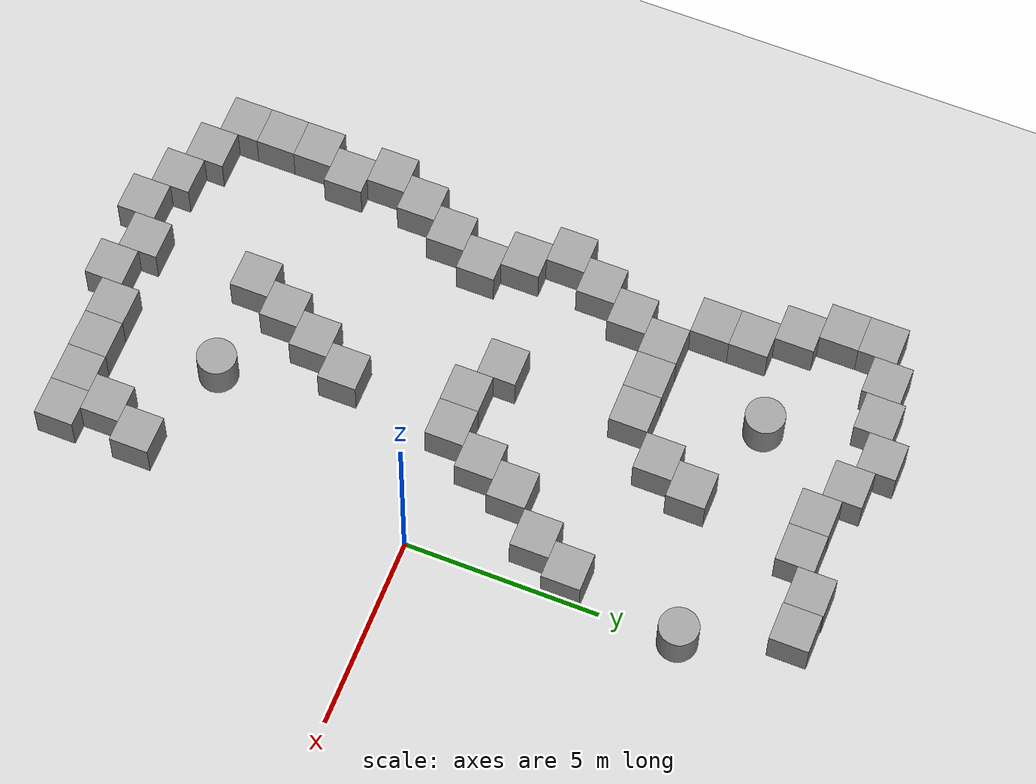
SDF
<sdf version="1.4">
 <world name="default">
  <model name="ground_plane">
   <static>1</static>
   <link name="link">
    <collision name="collision">
     <geometry><plane><normal>0 0 1</normal><size>100 100</size></plane></geometry>
     <surface><friction><ode><mu>100</mu><mu2>50</mu2></ode></friction></surface>
    </collision>
    <visual name="visual">
     <cast_shadows>0</cast_shadows>
     <geometry><plane><normal>0 0 1</normal><size>100 100</size></plane></geometry>
     <material>
      <script><uri>file://media/materials/scripts/gazebo.material</uri><name>Gazebo/Grey</name></script>
     </material>
    </visual>
    <velocity_decay><linear>0</linear><angular>0</angular></velocity_decay>
   </link>
  </model>
  <model name="unit_box_1">
   <pose>2e-06 -9 0.5 0 -0 5e-06</pose>
   <link name="link">
    <inertial>
     <mass>1</mass>
     <inertia><ixx>1</ixx><ixy>0</ixy><ixz>0</ixz><iyy>1</iyy><iyz>0</iyz><izz>1</izz></inertia>
    </inertial>
    <collision name="collision"><geometry><box><size>1 1 1</size></box></geometry></collision>
    <visual name="visual">
     <geometry><box><size>1 1 1</size></box></geometry>
     <material>
      <script><uri>file://media/materials/scripts/gazebo.material</uri><name>Gazebo/Grey</name></script>
     </material>
    </visual>
    <velocity_decay><linear>0</linear><angular>0</angular></velocity_decay>
   </link>
   <static>0</static>
  </model>
  <model name="unit_box_16">
   <pose>-0.505545 -8 0.5 0 -0 3e-06</pose>
   <link name="link">
    <inertial>
     <mass>1</mass>
     <inertia><ixx>1</ixx><ixy>0</ixy><ixz>0</ixz><iyy>1</iyy><iyz>0</iyz><izz>1</izz></inertia>
    </inertial>
    <collision name="collision"><geometry><box><size>1 1 1</size></box></geometry></collision>
    <visual name="visual">
     <geometry><box><size>1 1 1</size></box></geometry>
     <material>
      <script><uri>file://media/materials/scripts/gazebo.material</uri><name>Gazebo/Grey</name></script>
     </material>
    </visual>
    <velocity_decay><linear>0</linear><angular>0</angular></velocity_decay>
   </link>
   <static>0</static>
  </model>
  <model name="unit_box_17">
   <pose>1e-06 -7 0.5 0 0 -3e-06</pose>
   <link name="link">
    <inertial>
     <mass>1</mass>
     <inertia><ixx>1</ixx><ixy>0</ixy><ixz>0</ixz><iyy>1</iyy><iyz>0</iyz><izz>1</izz></inertia>
    </inertial>
    <collision name="collision"><geometry><box><size>1 1 1</size></box></geometry></collision>
    <visual name="visual">
     <geometry><box><size>1 1 1</size></box></geometry>
     <material>
      <script><uri>file://media/materials/scripts/gazebo.material</uri><name>Gazebo/Grey</name></script>
     </material>
    </visual>
    <velocity_decay><linear>0</linear><angular>0</angular></velocity_decay>
   </link>
   <static>0</static>
  </model>
  <model name="unit_box_51">
   <pose>-0.493767 4 0.5 0 -0 0</pose>
   <link name="link">
    <inertial>
     <mass>1</mass>
     <inertia><ixx>1</ixx><ixy>0</ixy><ixz>0</ixz><iyy>1</iyy><iyz>0</iyz><izz>1</izz></inertia>
    </inertial>
    <collision name="collision"><geometry><box><size>1 1 1</size></box></geometry></collision>
    <visual name="visual">
     <geometry><box><size>1 1 1</size></box></geometry>
     <material>
      <script><uri>file://media/materials/scripts/gazebo.material</uri><name>Gazebo/Grey</name></script>
     </material>
    </visual>
    <velocity_decay><linear>0</linear><angular>0</angular></velocity_decay>
   </link>
   <static>0</static>
  </model>
  <model name="unit_box_52">
   <pose>-1 3 0.5 0 -0 0</pose>
   <link name="link">
    <inertial>
     <mass>1</mass>
     <inertia><ixx>1</ixx><ixy>0</ixy><ixz>0</ixz><iyy>1</iyy><iyz>0</iyz><izz>1</izz></inertia>
    </inertial>
    <collision name="collision"><geometry><box><size>1 1 1</size></box></geometry></collision>
    <visual name="visual">
     <geometry><box><size>1 1 1</size></box></geometry>
     <material>
      <script><uri>file://media/materials/scripts/gazebo.material</uri><name>Gazebo/Grey</name></script>
     </material>
    </visual>
    <velocity_decay><linear>0</linear><angular>0</angular></velocity_decay>
   </link>
   <static>0</static>
  </model>
  <model name="unit_box_53">
   <pose>-2 2 0.5 0 -0 0</pose>
   <link name="link">
    <inertial>
     <mass>1</mass>
     <inertia><ixx>1</ixx><ixy>0</ixy><ixz>0</ixz><iyy>1</iyy><iyz>0</iyz><izz>1</izz></inertia>
    </inertial>
    <collision name="collision"><geometry><box><size>1 1 1</size></box></geometry></collision>
    <visual name="visual">
     <geometry><box><size>1 1 1</size></box></geometry>
     <material>
      <script><uri>file://media/materials/scripts/gazebo.material</uri><name>Gazebo/Grey</name></script>
     </material>
    </visual>
    <velocity_decay><linear>0</linear><angular>0</angular></velocity_decay>
   </link>
   <static>0</static>
  </model>
  <model name="unit_box_55">
   <pose>-2.42552 1 0.5 0 -0 0</pose>
   <link name="link">
    <inertial>
     <mass>1</mass>
     <inertia><ixx>1</ixx><ixy>0</ixy><ixz>0</ixz><iyy>1</iyy><iyz>0</iyz><izz>1</izz></inertia>
    </inertial>
    <collision name="collision"><geometry><box><size>1 1 1</size></box></geometry></collision>
    <visual name="visual">
     <geometry><box><size>1 1 1</size></box></geometry>
     <material>
      <script><uri>file://media/materials/scripts/gazebo.material</uri><name>Gazebo/Grey</name></script>
     </material>
    </visual>
    <velocity_decay><linear>0</linear><angular>0</angular></velocity_decay>
   </link>
   <static>0</static>
  </model>
  <model name="unit_box_56">
   <pose>-3 0 0.5 0 -0 0</pose>
   <link name="link">
    <inertial>
     <mass>1</mass>
     <inertia><ixx>1</ixx><ixy>0</ixy><ixz>0</ixz><iyy>1</iyy><iyz>0</iyz><izz>1</izz></inertia>
    </inertial>
    <collision name="collision"><geometry><box><size>1 1 1</size></box></geometry></collision>
    <visual name="visual">
     <geometry><box><size>1 1 1</size></box></geometry>
     <material>
      <script><uri>file://media/materials/scripts/gazebo.material</uri><name>Gazebo/Grey</name></script>
     </material>
    </visual>
    <velocity_decay><linear>0</linear><angular>0</angular></velocity_decay>
   </link>
   <static>0</static>
  </model>
  <model name="unit_box_57">
   <pose>-3.43559 -3 0.5 0 -0 0</pose>
   <link name="link">
    <inertial>
     <mass>1</mass>
     <inertia><ixx>1</ixx><ixy>0</ixy><ixz>0</ixz><iyy>1</iyy><iyz>0</iyz><izz>1</izz></inertia>
    </inertial>
    <collision name="collision"><geometry><box><size>1 1 1</size></box></geometry></collision>
    <visual name="visual">
     <geometry><box><size>1 1 1</size></box></geometry>
     <material>
      <script><uri>file://media/materials/scripts/gazebo.material</uri><name>Gazebo/Grey</name></script>
     </material>
    </visual>
    <velocity_decay><linear>0</linear><angular>0</angular></velocity_decay>
   </link>
   <static>0</static>
  </model>
  <model name="unit_box_58">
   <pose>-4 -4 0.5 0 -0 0</pose>
   <link name="link">
    <inertial>
     <mass>1</mass>
     <inertia><ixx>1</ixx><ixy>0</ixy><ixz>0</ixz><iyy>1</iyy><iyz>0</iyz><izz>1</izz></inertia>
    </inertial>
    <collision name="collision"><geometry><box><size>1 1 1</size></box></geometry></collision>
    <visual name="visual">
     <geometry><box><size>1 1 1</size></box></geometry>
     <material>
      <script><uri>file://media/materials/scripts/gazebo.material</uri><name>Gazebo/Grey</name></script>
     </material>
    </visual>
    <velocity_decay><linear>0</linear><angular>0</angular></velocity_decay>
   </link>
   <static>0</static>
  </model>
  <model name="unit_box_59">
   <pose>-4.4999 -5 0.5 0 -0 0</pose>
   <link name="link">
    <inertial>
     <mass>1</mass>
     <inertia><ixx>1</ixx><ixy>0</ixy><ixz>0</ixz><iyy>1</iyy><iyz>0</iyz><izz>1</izz></inertia>
    </inertial>
    <collision name="collision"><geometry><box><size>1 1 1</size></box></geometry></collision>
    <visual name="visual">
     <geometry><box><size>1 1 1</size></box></geometry>
     <material>
      <script><uri>file://media/materials/scripts/gazebo.material</uri><name>Gazebo/Grey</name></script>
     </material>
    </visual>
    <velocity_decay><linear>0</linear><angular>0</angular></velocity_decay>
   </link>
   <static>0</static>
  </model>
  <model name="unit_box_60">
   <pose>-5 -6 0.5 0 -0 0</pose>
   <link name="link">
    <inertial>
     <mass>1</mass>
     <inertia><ixx>1</ixx><ixy>0</ixy><ixz>0</ixz><iyy>1</iyy><iyz>0</iyz><izz>1</izz></inertia>
    </inertial>
    <collision name="collision"><geometry><box><size>1 1 1</size></box></geometry></collision>
    <visual name="visual">
     <geometry><box><size>1 1 1</size></box></geometry>
     <material>
      <script><uri>file://media/materials/scripts/gazebo.material</uri><name>Gazebo/Grey</name></script>
     </material>
    </visual>
    <velocity_decay><linear>0</linear><angular>0</angular></velocity_decay>
   </link>
   <static>0</static>
  </model>
  <model name="unit_box_61">
   <pose>-0.999998 -9.00001 0.5 0 -0 5e-06</pose>
   <link name="link">
    <inertial>
     <mass>1</mass>
     <inertia><ixx>1</ixx><ixy>0</ixy><ixz>0</ixz><iyy>1</iyy><iyz>0</iyz><izz>1</izz></inertia>
    </inertial>
    <collision name="collision"><geometry><box><size>1 1 1</size></box></geometry></collision>
    <visual name="visual">
     <geometry><box><size>1 1 1</size></box></geometry>
     <material>
      <script><uri>file://media/materials/scripts/gazebo.material</uri><name>Gazebo/Grey</name></script>
     </material>
    </visual>
    <velocity_decay><linear>0</linear><angular>0</angular></velocity_decay>
   </link>
   <static>0</static>
  </model>
  <model name="unit_box_62">
   <pose>-2 -9.00001 0.5 0 -0 5e-06</pose>
   <link name="link">
    <inertial>
     <mass>1</mass>
     <inertia><ixx>1</ixx><ixy>0</ixy><ixz>0</ixz><iyy>1</iyy><iyz>0</iyz><izz>1</izz></inertia>
    </inertial>
    <collision name="collision"><geometry><box><size>1 1 1</size></box></geometry></collision>
    <visual name="visual">
     <geometry><box><size>1 1 1</size></box></geometry>
     <material>
      <script><uri>file://media/materials/scripts/gazebo.material</uri><name>Gazebo/Grey</name></script>
     </material>
    </visual>
    <velocity_decay><linear>0</linear><angular>0</angular></velocity_decay>
   </link>
   <static>0</static>
  </model>
  <model name="unit_box_63">
   <pose>-3 -9 0.5 0 -0 6e-06</pose>
   <link name="link">
    <inertial>
     <mass>1</mass>
     <inertia><ixx>1</ixx><ixy>0</ixy><ixz>0</ixz><iyy>1</iyy><iyz>0</iyz><izz>1</izz></inertia>
    </inertial>
    <collision name="collision"><geometry><box><size>1 1 1</size></box></geometry></collision>
    <visual name="visual">
     <geometry><box><size>1 1 1</size></box></geometry>
     <material>
      <script><uri>file://media/materials/scripts/gazebo.material</uri><name>Gazebo/Grey</name></script>
     </material>
    </visual>
    <velocity_decay><linear>0</linear><angular>0</angular></velocity_decay>
   </link>
   <static>0</static>
  </model>
  <model name="unit_box_64">
   <pose>-4 -9.47105 0.5 0 -0 5e-06</pose>
   <link name="link">
    <inertial>
     <mass>1</mass>
     <inertia><ixx>1</ixx><ixy>0</ixy><ixz>0</ixz><iyy>1</iyy><iyz>0</iyz><izz>1</izz></inertia>
    </inertial>
    <collision name="collision"><geometry><box><size>1 1 1</size></box></geometry></collision>
    <visual name="visual">
     <geometry><box><size>1 1 1</size></box></geometry>
     <material>
      <script><uri>file://media/materials/scripts/gazebo.material</uri><name>Gazebo/Grey</name></script>
     </material>
    </visual>
    <velocity_decay><linear>0</linear><angular>0</angular></velocity_decay>
   </link>
   <static>0</static>
  </model>
  <model name="unit_box_65">
   <pose>-5 -9.00001 0.5 0 -0 5e-06</pose>
   <link name="link">
    <inertial>
     <mass>1</mass>
     <inertia><ixx>1</ixx><ixy>0</ixy><ixz>0</ixz><iyy>1</iyy><iyz>0</iyz><izz>1</izz></inertia>
    </inertial>
    <collision name="collision"><geometry><box><size>1 1 1</size></box></geometry></collision>
    <visual name="visual">
     <geometry><box><size>1 1 1</size></box></geometry>
     <material>
      <script><uri>file://media/materials/scripts/gazebo.material</uri><name>Gazebo/Grey</name></script>
     </material>
    </visual>
    <velocity_decay><linear>0</linear><angular>0</angular></velocity_decay>
   </link>
   <static>0</static>
  </model>
  <model name="unit_box_66">
   <pose>-6 -9.48964 0.5 0 0 -4e-06</pose>
   <link name="link">
    <inertial>
     <mass>1</mass>
     <inertia><ixx>1</ixx><ixy>0</ixy><ixz>0</ixz><iyy>1</iyy><iyz>0</iyz><izz>1</izz></inertia>
    </inertial>
    <collision name="collision"><geometry><box><size>1 1 1</size></box></geometry></collision>
    <visual name="visual">
     <geometry><box><size>1 1 1</size></box></geometry>
     <material>
      <script><uri>file://media/materials/scripts/gazebo.material</uri><name>Gazebo/Grey</name></script>
     </material>
    </visual>
    <velocity_decay><linear>0</linear><angular>0</angular></velocity_decay>
   </link>
   <static>0</static>
  </model>
  <model name="unit_box_67">
   <pose>-7.00001 -9 0.5 0 0 -9e-06</pose>
   <link name="link">
    <inertial>
     <mass>1</mass>
     <inertia><ixx>1</ixx><ixy>0</ixy><ixz>0</ixz><iyy>1</iyy><iyz>0</iyz><izz>1</izz></inertia>
    </inertial>
    <collision name="collision"><geometry><box><size>1 1 1</size></box></geometry></collision>
    <visual name="visual">
     <geometry><box><size>1 1 1</size></box></geometry>
     <material>
      <script><uri>file://media/materials/scripts/gazebo.material</uri><name>Gazebo/Grey</name></script>
     </material>
    </visual>
    <velocity_decay><linear>0</linear><angular>0</angular></velocity_decay>
   </link>
   <static>0</static>
  </model>
  <model name="unit_box_68">
   <pose>-8 -8.51501 0.5 0 -0 -9e-06</pose>
   <link name="link">
    <inertial>
     <mass>1</mass>
     <inertia><ixx>1</ixx><ixy>0</ixy><ixz>0</ixz><iyy>1</iyy><iyz>0</iyz><izz>1</izz></inertia>
    </inertial>
    <collision name="collision"><geometry><box><size>1 1 1</size></box></geometry></collision>
    <visual name="visual">
     <geometry><box><size>1 1 1</size></box></geometry>
     <material>
      <script><uri>file://media/materials/scripts/gazebo.material</uri><name>Gazebo/Grey</name></script>
     </material>
    </visual>
    <velocity_decay><linear>0</linear><angular>0</angular></velocity_decay>
   </link>
   <static>0</static>
  </model>
  <model name="unit_box_69">
   <pose>-9 -8 0.5 -0 -0 -5e-06</pose>
   <link name="link">
    <inertial>
     <mass>1</mass>
     <inertia><ixx>1</ixx><ixy>0</ixy><ixz>0</ixz><iyy>1</iyy><iyz>0</iyz><izz>1</izz></inertia>
    </inertial>
    <collision name="collision"><geometry><box><size>1 1 1</size></box></geometry></collision>
    <visual name="visual">
     <geometry><box><size>1 1 1</size></box></geometry>
     <material>
      <script><uri>file://media/materials/scripts/gazebo.material</uri><name>Gazebo/Grey</name></script>
     </material>
    </visual>
    <velocity_decay><linear>0</linear><angular>0</angular></velocity_decay>
   </link>
   <static>0</static>
  </model>
  <model name="unit_box_70">
   <pose>-9 -7 0.5 -0 -0 -9e-06</pose>
   <link name="link">
    <inertial>
     <mass>1</mass>
     <inertia><ixx>1</ixx><ixy>0</ixy><ixz>0</ixz><iyy>1</iyy><iyz>0</iyz><izz>1</izz></inertia>
    </inertial>
    <collision name="collision"><geometry><box><size>1 1 1</size></box></geometry></collision>
    <visual name="visual">
     <geometry><box><size>1 1 1</size></box></geometry>
     <material>
      <script><uri>file://media/materials/scripts/gazebo.material</uri><name>Gazebo/Grey</name></script>
     </material>
    </visual>
    <velocity_decay><linear>0</linear><angular>0</angular></velocity_decay>
   </link>
   <static>0</static>
  </model>
  <model name="unit_box_71">
   <pose>-9 -6 0.5 0 0 -9e-06</pose>
   <link name="link">
    <inertial>
     <mass>1</mass>
     <inertia><ixx>1</ixx><ixy>0</ixy><ixz>0</ixz><iyy>1</iyy><iyz>0</iyz><izz>1</izz></inertia>
    </inertial>
    <collision name="collision"><geometry><box><size>1 1 1</size></box></geometry></collision>
    <visual name="visual">
     <geometry><box><size>1 1 1</size></box></geometry>
     <material>
      <script><uri>file://media/materials/scripts/gazebo.material</uri><name>Gazebo/Grey</name></script>
     </material>
    </visual>
    <velocity_decay><linear>0</linear><angular>0</angular></velocity_decay>
   </link>
   <static>0</static>
  </model>
  <model name="unit_box_72">
   <pose>-8.59632 -5 0.5 0 -0 -9e-06</pose>
   <link name="link">
    <inertial>
     <mass>1</mass>
     <inertia><ixx>1</ixx><ixy>0</ixy><ixz>0</ixz><iyy>1</iyy><iyz>0</iyz><izz>1</izz></inertia>
    </inertial>
    <collision name="collision"><geometry><box><size>1 1 1</size></box></geometry></collision>
    <visual name="visual">
     <geometry><box><size>1 1 1</size></box></geometry>
     <material>
      <script><uri>file://media/materials/scripts/gazebo.material</uri><name>Gazebo/Grey</name></script>
     </material>
    </visual>
    <velocity_decay><linear>0</linear><angular>0</angular></velocity_decay>
   </link>
   <static>0</static>
  </model>
  <model name="unit_box_73">
   <pose>-8.99999 -4 0.5 0 0 -9e-06</pose>
   <link name="link">
    <inertial>
     <mass>1</mass>
     <inertia><ixx>1</ixx><ixy>0</ixy><ixz>0</ixz><iyy>1</iyy><iyz>0</iyz><izz>1</izz></inertia>
    </inertial>
    <collision name="collision"><geometry><box><size>1 1 1</size></box></geometry></collision>
    <visual name="visual">
     <geometry><box><size>1 1 1</size></box></geometry>
     <material>
      <script><uri>file://media/materials/scripts/gazebo.material</uri><name>Gazebo/Grey</name></script>
     </material>
    </visual>
    <velocity_decay><linear>0</linear><angular>0</angular></velocity_decay>
   </link>
   <static>0</static>
  </model>
  <model name="unit_box_74">
   <pose>-8.53744 -3 0.5 0 -0 -1.1e-05</pose>
   <link name="link">
    <inertial>
     <mass>1</mass>
     <inertia><ixx>1</ixx><ixy>0</ixy><ixz>0</ixz><iyy>1</iyy><iyz>0</iyz><izz>1</izz></inertia>
    </inertial>
    <collision name="collision"><geometry><box><size>1 1 1</size></box></geometry></collision>
    <visual name="visual">
     <geometry><box><size>1 1 1</size></box></geometry>
     <material>
      <script><uri>file://media/materials/scripts/gazebo.material</uri><name>Gazebo/Grey</name></script>
     </material>
    </visual>
    <velocity_decay><linear>0</linear><angular>0</angular></velocity_decay>
   </link>
   <static>0</static>
  </model>
  <model name="unit_box_75">
   <pose>-8.00001 -2 0.5 0 0 -1.1e-05</pose>
   <link name="link">
    <inertial>
     <mass>1</mass>
     <inertia><ixx>1</ixx><ixy>0</ixy><ixz>0</ixz><iyy>1</iyy><iyz>0</iyz><izz>1</izz></inertia>
    </inertial>
    <collision name="collision"><geometry><box><size>1 1 1</size></box></geometry></collision>
    <visual name="visual">
     <geometry><box><size>1 1 1</size></box></geometry>
     <material>
      <script><uri>file://media/materials/scripts/gazebo.material</uri><name>Gazebo/Grey</name></script>
     </material>
    </visual>
    <velocity_decay><linear>0</linear><angular>0</angular></velocity_decay>
   </link>
   <static>0</static>
  </model>
  <model name="unit_box_76">
   <pose>-7.51604 -0.999999 0.5 0 -0 3e-06</pose>
   <link name="link">
    <inertial>
     <mass>1</mass>
     <inertia><ixx>1</ixx><ixy>0</ixy><ixz>0</ixz><iyy>1</iyy><iyz>0</iyz><izz>1</izz></inertia>
    </inertial>
    <collision name="collision"><geometry><box><size>1 1 1</size></box></geometry></collision>
    <visual name="visual">
     <geometry><box><size>1 1 1</size></box></geometry>
     <material>
      <script><uri>file://media/materials/scripts/gazebo.material</uri><name>Gazebo/Grey</name></script>
     </material>
    </visual>
    <velocity_decay><linear>0</linear><angular>0</angular></velocity_decay>
   </link>
   <static>0</static>
  </model>
  <model name="unit_box_77">
   <pose>-4 0 0.5 0 -0 0</pose>
   <link name="link">
    <inertial>
     <mass>1</mass>
     <inertia><ixx>1</ixx><ixy>0</ixy><ixz>0</ixz><iyy>1</iyy><iyz>0</iyz><izz>1</izz></inertia>
    </inertial>
    <collision name="collision"><geometry><box><size>1 1 1</size></box></geometry></collision>
    <visual name="visual">
     <geometry><box><size>1 1 1</size></box></geometry>
     <material>
      <script><uri>file://media/materials/scripts/gazebo.material</uri><name>Gazebo/Grey</name></script>
     </material>
    </visual>
    <velocity_decay><linear>0</linear><angular>0</angular></velocity_decay>
   </link>
   <static>0</static>
  </model>
  <model name="unit_box_78">
   <pose>-5 0.564963 0.5 0 -0 0</pose>
   <link name="link">
    <inertial>
     <mass>1</mass>
     <inertia><ixx>1</ixx><ixy>0</ixy><ixz>0</ixz><iyy>1</iyy><iyz>0</iyz><izz>1</izz></inertia>
    </inertial>
    <collision name="collision"><geometry><box><size>1 1 1</size></box></geometry></collision>
    <visual name="visual">
     <geometry><box><size>1 1 1</size></box></geometry>
     <material>
      <script><uri>file://media/materials/scripts/gazebo.material</uri><name>Gazebo/Grey</name></script>
     </material>
    </visual>
    <velocity_decay><linear>0</linear><angular>0</angular></velocity_decay>
   </link>
   <static>0</static>
  </model>
  <model name="unit_box_79">
   <pose>-8 -1e-06 0.5 0 -0 5e-06</pose>
   <link name="link">
    <inertial>
     <mass>1</mass>
     <inertia><ixx>1</ixx><ixy>0</ixy><ixz>0</ixz><iyy>1</iyy><iyz>0</iyz><izz>1</izz></inertia>
    </inertial>
    <collision name="collision"><geometry><box><size>1 1 1</size></box></geometry></collision>
    <visual name="visual">
     <geometry><box><size>1 1 1</size></box></geometry>
     <material>
      <script><uri>file://media/materials/scripts/gazebo.material</uri><name>Gazebo/Grey</name></script>
     </material>
    </visual>
    <velocity_decay><linear>0</linear><angular>0</angular></velocity_decay>
   </link>
   <static>0</static>
  </model>
  <model name="unit_box_80">
   <pose>-8.54155 0.999998 0.5 0 -0 4e-06</pose>
   <link name="link">
    <inertial>
     <mass>1</mass>
     <inertia><ixx>1</ixx><ixy>0</ixy><ixz>0</ixz><iyy>1</iyy><iyz>0</iyz><izz>1</izz></inertia>
    </inertial>
    <collision name="collision"><geometry><box><size>1 1 1</size></box></geometry></collision>
    <visual name="visual">
     <geometry><box><size>1 1 1</size></box></geometry>
     <material>
      <script><uri>file://media/materials/scripts/gazebo.material</uri><name>Gazebo/Grey</name></script>
     </material>
    </visual>
    <velocity_decay><linear>0</linear><angular>0</angular></velocity_decay>
   </link>
   <static>0</static>
  </model>
  <model name="unit_box_81">
   <pose>-8 2 0.5 0 0 -6e-06</pose>
   <link name="link">
    <inertial>
     <mass>1</mass>
     <inertia><ixx>1</ixx><ixy>0</ixy><ixz>0</ixz><iyy>1</iyy><iyz>0</iyz><izz>1</izz></inertia>
    </inertial>
    <collision name="collision"><geometry><box><size>1 1 1</size></box></geometry></collision>
    <visual name="visual">
     <geometry><box><size>1 1 1</size></box></geometry>
     <material>
      <script><uri>file://media/materials/scripts/gazebo.material</uri><name>Gazebo/Grey</name></script>
     </material>
    </visual>
    <velocity_decay><linear>0</linear><angular>0</angular></velocity_decay>
   </link>
   <static>0</static>
  </model>
  <model name="unit_box_82">
   <pose>-7.49011 3 0.5 0 0 -7e-06</pose>
   <link name="link">
    <inertial>
     <mass>1</mass>
     <inertia><ixx>1</ixx><ixy>0</ixy><ixz>0</ixz><iyy>1</iyy><iyz>0</iyz><izz>1</izz></inertia>
    </inertial>
    <collision name="collision"><geometry><box><size>1 1 1</size></box></geometry></collision>
    <visual name="visual">
     <geometry><box><size>1 1 1</size></box></geometry>
     <material>
      <script><uri>file://media/materials/scripts/gazebo.material</uri><name>Gazebo/Grey</name></script>
     </material>
    </visual>
    <velocity_decay><linear>0</linear><angular>0</angular></velocity_decay>
   </link>
   <static>0</static>
  </model>
  <model name="unit_box_83">
   <pose>-7 4 0.5 -0 -0 -0</pose>
   <link name="link">
    <inertial>
     <mass>1</mass>
     <inertia><ixx>1</ixx><ixy>0</ixy><ixz>0</ixz><iyy>1</iyy><iyz>0</iyz><izz>1</izz></inertia>
    </inertial>
    <collision name="collision"><geometry><box><size>1 1 1</size></box></geometry></collision>
    <visual name="visual">
     <geometry><box><size>1 1 1</size></box></geometry>
     <material>
      <script><uri>file://media/materials/scripts/gazebo.material</uri><name>Gazebo/Grey</name></script>
     </material>
    </visual>
    <velocity_decay><linear>0</linear><angular>0</angular></velocity_decay>
   </link>
   <static>0</static>
  </model>
  <model name="unit_box_84">
   <pose>-6 4 0.5 0 -0 0</pose>
   <link name="link">
    <inertial>
     <mass>1</mass>
     <inertia><ixx>1</ixx><ixy>0</ixy><ixz>0</ixz><iyy>1</iyy><iyz>0</iyz><izz>1</izz></inertia>
    </inertial>
    <collision name="collision"><geometry><box><size>1 1 1</size></box></geometry></collision>
    <visual name="visual">
     <geometry><box><size>1 1 1</size></box></geometry>
     <material>
      <script><uri>file://media/materials/scripts/gazebo.material</uri><name>Gazebo/Grey</name></script>
     </material>
    </visual>
    <velocity_decay><linear>0</linear><angular>0</angular></velocity_decay>
   </link>
   <static>0</static>
  </model>
  <model name="unit_box_85">
   <pose>-5 4 0.5 -0 -0 -1e-06</pose>
   <link name="link">
    <inertial>
     <mass>1</mass>
     <inertia><ixx>1</ixx><ixy>0</ixy><ixz>0</ixz><iyy>1</iyy><iyz>0</iyz><izz>1</izz></inertia>
    </inertial>
    <collision name="collision"><geometry><box><size>1 1 1</size></box></geometry></collision>
    <visual name="visual">
     <geometry><box><size>1 1 1</size></box></geometry>
     <material>
      <script><uri>file://media/materials/scripts/gazebo.material</uri><name>Gazebo/Grey</name></script>
     </material>
    </visual>
    <velocity_decay><linear>0</linear><angular>0</angular></velocity_decay>
   </link>
   <static>0</static>
  </model>
  <model name="unit_box_86">
   <pose>-4 5 0.5 -0 -0 -0</pose>
   <link name="link">
    <inertial>
     <mass>1</mass>
     <inertia><ixx>1</ixx><ixy>0</ixy><ixz>0</ixz><iyy>1</iyy><iyz>0</iyz><izz>1</izz></inertia>
    </inertial>
    <collision name="collision"><geometry><box><size>1 1 1</size></box></geometry></collision>
    <visual name="visual">
     <geometry><box><size>1 1 1</size></box></geometry>
     <material>
      <script><uri>file://media/materials/scripts/gazebo.material</uri><name>Gazebo/Grey</name></script>
     </material>
    </visual>
    <velocity_decay><linear>0</linear><angular>0</angular></velocity_decay>
   </link>
   <static>0</static>
  </model>
  <model name="unit_box_87">
   <pose>-3.58648 6 0.5 0 -0 0</pose>
   <link name="link">
    <inertial>
     <mass>1</mass>
     <inertia><ixx>1</ixx><ixy>0</ixy><ixz>0</ixz><iyy>1</iyy><iyz>0</iyz><izz>1</izz></inertia>
    </inertial>
    <collision name="collision"><geometry><box><size>1 1 1</size></box></geometry></collision>
    <visual name="visual">
     <geometry><box><size>1 1 1</size></box></geometry>
     <material>
      <script><uri>file://media/materials/scripts/gazebo.material</uri><name>Gazebo/Grey</name></script>
     </material>
    </visual>
    <velocity_decay><linear>0</linear><angular>0</angular></velocity_decay>
   </link>
   <static>0</static>
  </model>
  <model name="unit_box_88">
   <pose>-3 9.00004 0.5 0 -0 2e-06</pose>
   <link name="link">
    <inertial>
     <mass>1</mass>
     <inertia><ixx>1</ixx><ixy>0</ixy><ixz>0</ixz><iyy>1</iyy><iyz>0</iyz><izz>1</izz></inertia>
    </inertial>
    <collision name="collision"><geometry><box><size>1 1 1</size></box></geometry></collision>
    <visual name="visual">
     <geometry><box><size>1 1 1</size></box></geometry>
     <material>
      <script><uri>file://media/materials/scripts/gazebo.material</uri><name>Gazebo/Grey</name></script>
     </material>
    </visual>
    <velocity_decay><linear>0</linear><angular>0</angular></velocity_decay>
   </link>
   <static>0</static>
  </model>
  <model name="unit_cylinder_5">
   <pose>0 7 0.499998 1e-06 -0 0</pose>
   <link name="link">
    <inertial>
     <mass>1</mass>
     <inertia><ixx>1</ixx><ixy>0</ixy><ixz>0</ixz><iyy>1</iyy><iyz>0</iyz><izz>1</izz></inertia>
    </inertial>
    <collision name="collision">
     <geometry><cylinder><radius>0.5</radius><length>1</length></cylinder></geometry>
    </collision>
    <visual name="visual">
     <geometry><cylinder><radius>0.5</radius><length>1</length></cylinder></geometry>
     <material>
      <script><uri>file://media/materials/scripts/gazebo.material</uri><name>Gazebo/Grey</name></script>
     </material>
    </visual>
    <velocity_decay><linear>0</linear><angular>0</angular></velocity_decay>
   </link>
   <static>0</static>
  </model>
  <model name="unit_box_89">
   <pose>-2 9.57908 0.5 0 -0 8e-06</pose>
   <link name="link">
    <inertial>
     <mass>1</mass>
     <inertia><ixx>1</ixx><ixy>0</ixy><ixz>0</ixz><iyy>1</iyy><iyz>0</iyz><izz>1</izz></inertia>
    </inertial>
    <collision name="collision"><geometry><box><size>1 1 1</size></box></geometry></collision>
    <visual name="visual">
     <geometry><box><size>1 1 1</size></box></geometry>
     <material>
      <script><uri>file://media/materials/scripts/gazebo.material</uri><name>Gazebo/Grey</name></script>
     </material>
    </visual>
    <velocity_decay><linear>0</linear><angular>0</angular></velocity_decay>
   </link>
   <static>0</static>
  </model>
  <model name="unit_box_90">
   <pose>-0.999996 9.56214 0.5 0 -0 6e-06</pose>
   <link name="link">
    <inertial>
     <mass>1</mass>
     <inertia><ixx>1</ixx><ixy>0</ixy><ixz>0</ixz><iyy>1</iyy><iyz>0</iyz><izz>1</izz></inertia>
    </inertial>
    <collision name="collision"><geometry><box><size>1 1 1</size></box></geometry></collision>
    <visual name="visual">
     <geometry><box><size>1 1 1</size></box></geometry>
     <material>
      <script><uri>file://media/materials/scripts/gazebo.material</uri><name>Gazebo/Grey</name></script>
     </material>
    </visual>
    <velocity_decay><linear>0</linear><angular>0</angular></velocity_decay>
   </link>
   <static>0</static>
  </model>
  <model name="unit_box_95">
   <pose>-4 9.00003 0.5 0 -0 0</pose>
   <link name="link">
    <inertial>
     <mass>1</mass>
     <inertia><ixx>1</ixx><ixy>0</ixy><ixz>0</ixz><iyy>1</iyy><iyz>0</iyz><izz>1</izz></inertia>
    </inertial>
    <collision name="collision"><geometry><box><size>1 1 1</size></box></geometry></collision>
    <visual name="visual">
     <geometry><box><size>1 1 1</size></box></geometry>
     <material>
      <script><uri>file://media/materials/scripts/gazebo.material</uri><name>Gazebo/Grey</name></script>
     </material>
    </visual>
    <velocity_decay><linear>0</linear><angular>0</angular></velocity_decay>
   </link>
   <static>0</static>
  </model>
  <model name="unit_box_96">
   <pose>-5 9.49138 0.5 0 -0 -3e-06</pose>
   <link name="link">
    <inertial>
     <mass>1</mass>
     <inertia><ixx>1</ixx><ixy>0</ixy><ixz>0</ixz><iyy>1</iyy><iyz>0</iyz><izz>1</izz></inertia>
    </inertial>
    <collision name="collision"><geometry><box><size>1 1 1</size></box></geometry></collision>
    <visual name="visual">
     <geometry><box><size>1 1 1</size></box></geometry>
     <material>
      <script><uri>file://media/materials/scripts/gazebo.material</uri><name>Gazebo/Grey</name></script>
     </material>
    </visual>
    <velocity_decay><linear>0</linear><angular>0</angular></velocity_decay>
   </link>
   <static>0</static>
  </model>
  <model name="unit_box_97">
   <pose>-6 9.99999 0.5 0 -0 3e-06</pose>
   <link name="link">
    <inertial>
     <mass>1</mass>
     <inertia><ixx>1</ixx><ixy>0</ixy><ixz>0</ixz><iyy>1</iyy><iyz>0</iyz><izz>1</izz></inertia>
    </inertial>
    <collision name="collision"><geometry><box><size>1 1 1</size></box></geometry></collision>
    <visual name="visual">
     <geometry><box><size>1 1 1</size></box></geometry>
     <material>
      <script><uri>file://media/materials/scripts/gazebo.material</uri><name>Gazebo/Grey</name></script>
     </material>
    </visual>
    <velocity_decay><linear>0</linear><angular>0</angular></velocity_decay>
   </link>
   <static>0</static>
  </model>
  <model name="unit_box_98">
   <pose>-7 9.58058 0.5 0 -0 4e-06</pose>
   <link name="link">
    <inertial>
     <mass>1</mass>
     <inertia><ixx>1</ixx><ixy>0</ixy><ixz>0</ixz><iyy>1</iyy><iyz>0</iyz><izz>1</izz></inertia>
    </inertial>
    <collision name="collision"><geometry><box><size>1 1 1</size></box></geometry></collision>
    <visual name="visual">
     <geometry><box><size>1 1 1</size></box></geometry>
     <material>
      <script><uri>file://media/materials/scripts/gazebo.material</uri><name>Gazebo/Grey</name></script>
     </material>
    </visual>
    <velocity_decay><linear>0</linear><angular>0</angular></velocity_decay>
   </link>
   <static>0</static>
  </model>
  <model name="unit_box_99">
   <pose>-8 9.43578 0.5 0 -0 4e-06</pose>
   <link name="link">
    <inertial>
     <mass>1</mass>
     <inertia><ixx>1</ixx><ixy>0</ixy><ixz>0</ixz><iyy>1</iyy><iyz>0</iyz><izz>1</izz></inertia>
    </inertial>
    <collision name="collision"><geometry><box><size>1 1 1</size></box></geometry></collision>
    <visual name="visual">
     <geometry><box><size>1 1 1</size></box></geometry>
     <material>
      <script><uri>file://media/materials/scripts/gazebo.material</uri><name>Gazebo/Grey</name></script>
     </material>
    </visual>
    <velocity_decay><linear>0</linear><angular>0</angular></velocity_decay>
   </link>
   <static>0</static>
  </model>
  <model name="unit_box_100">
   <pose>-9 9 0.5 0 -0 1e-06</pose>
   <link name="link">
    <inertial>
     <mass>1</mass>
     <inertia><ixx>1</ixx><ixy>0</ixy><ixz>0</ixz><iyy>1</iyy><iyz>0</iyz><izz>1</izz></inertia>
    </inertial>
    <collision name="collision"><geometry><box><size>1 1 1</size></box></geometry></collision>
    <visual name="visual">
     <geometry><box><size>1 1 1</size></box></geometry>
     <material>
      <script><uri>file://media/materials/scripts/gazebo.material</uri><name>Gazebo/Grey</name></script>
     </material>
    </visual>
    <velocity_decay><linear>0</linear><angular>0</angular></velocity_decay>
   </link>
   <static>0</static>
  </model>
  <model name="unit_box_101">
   <pose>-9 8 0.5 0 -0 0</pose>
   <link name="link">
    <inertial>
     <mass>1</mass>
     <inertia><ixx>1</ixx><ixy>0</ixy><ixz>0</ixz><iyy>1</iyy><iyz>0</iyz><izz>1</izz></inertia>
    </inertial>
    <collision name="collision"><geometry><box><size>1 1 1</size></box></geometry></collision>
    <visual name="visual">
     <geometry><box><size>1 1 1</size></box></geometry>
     <material>
      <script><uri>file://media/materials/scripts/gazebo.material</uri><name>Gazebo/Grey</name></script>
     </material>
    </visual>
    <velocity_decay><linear>0</linear><angular>0</angular></velocity_decay>
   </link>
   <static>0</static>
  </model>
  <model name="unit_box_102">
   <pose>-8.56574 7 0.5 0 -0 0</pose>
   <link name="link">
    <inertial>
     <mass>1</mass>
     <inertia><ixx>1</ixx><ixy>0</ixy><ixz>0</ixz><iyy>1</iyy><iyz>0</iyz><izz>1</izz></inertia>
    </inertial>
    <collision name="collision"><geometry><box><size>1 1 1</size></box></geometry></collision>
    <visual name="visual">
     <geometry><box><size>1 1 1</size></box></geometry>
     <material>
      <script><uri>file://media/materials/scripts/gazebo.material</uri><name>Gazebo/Grey</name></script>
     </material>
    </visual>
    <velocity_decay><linear>0</linear><angular>0</angular></velocity_decay>
   </link>
   <static>0</static>
  </model>
  <model name="unit_box_103">
   <pose>-8 6 0.5 0 -0 0</pose>
   <link name="link">
    <inertial>
     <mass>1</mass>
     <inertia><ixx>1</ixx><ixy>0</ixy><ixz>0</ixz><iyy>1</iyy><iyz>0</iyz><izz>1</izz></inertia>
    </inertial>
    <collision name="collision"><geometry><box><size>1 1 1</size></box></geometry></collision>
    <visual name="visual">
     <geometry><box><size>1 1 1</size></box></geometry>
     <material>
      <script><uri>file://media/materials/scripts/gazebo.material</uri><name>Gazebo/Grey</name></script>
     </material>
    </visual>
    <velocity_decay><linear>0</linear><angular>0</angular></velocity_decay>
   </link>
   <static>0</static>
  </model>
  <model name="unit_box_104">
   <pose>-8 5 0.5 0 -0 0</pose>
   <link name="link">
    <inertial>
     <mass>1</mass>
     <inertia><ixx>1</ixx><ixy>0</ixy><ixz>0</ixz><iyy>1</iyy><iyz>0</iyz><izz>1</izz></inertia>
    </inertial>
    <collision name="collision"><geometry><box><size>1 1 1</size></box></geometry></collision>
    <visual name="visual">
     <geometry><box><size>1 1 1</size></box></geometry>
     <material>
      <script><uri>file://media/materials/scripts/gazebo.material</uri><name>Gazebo/Grey</name></script>
     </material>
    </visual>
    <velocity_decay><linear>0</linear><angular>0</angular></velocity_decay>
   </link>
   <static>0</static>
  </model>
  <model name="unit_cylinder_6">
   <pose>-6 7 0.499998 0 -0 0</pose>
   <link name="link">
    <inertial>
     <mass>1</mass>
     <inertia><ixx>1</ixx><ixy>0</ixy><ixz>0</ixz><iyy>1</iyy><iyz>0</iyz><izz>1</izz></inertia>
    </inertial>
    <collision name="collision">
     <geometry><cylinder><radius>0.5</radius><length>1</length></cylinder></geometry>
    </collision>
    <visual name="visual">
     <geometry><cylinder><radius>0.5</radius><length>1</length></cylinder></geometry>
     <material>
      <script><uri>file://media/materials/scripts/gazebo.material</uri><name>Gazebo/Grey</name></script>
     </material>
    </visual>
    <velocity_decay><linear>0</linear><angular>0</angular></velocity_decay>
   </link>
   <static>0</static>
  </model>
  <model name="unit_cylinder_7">
   <pose>-2.5378 -6 0.499992 0 -0 0</pose>
   <link name="link">
    <inertial>
     <mass>1</mass>
     <inertia><ixx>1</ixx><ixy>0</ixy><ixz>0</ixz><iyy>1</iyy><iyz>0</iyz><izz>1</izz></inertia>
    </inertial>
    <collision name="collision">
     <geometry><cylinder><radius>0.5</radius><length>1</length></cylinder></geometry>
    </collision>
    <visual name="visual">
     <geometry><cylinder><radius>0.5</radius><length>1</length></cylinder></geometry>
     <material>
      <script><uri>file://media/materials/scripts/gazebo.material</uri><name>Gazebo/Grey</name></script>
     </material>
    </visual>
    <velocity_decay><linear>0</linear><angular>0</angular></velocity_decay>
   </link>
   <static>0</static>
  </model>
 </world>
</sdf>
